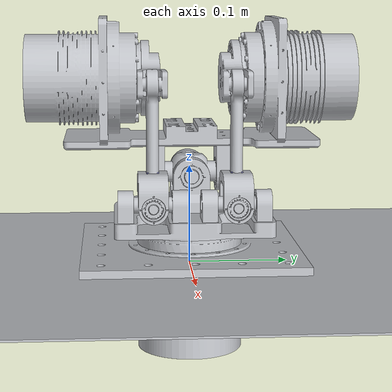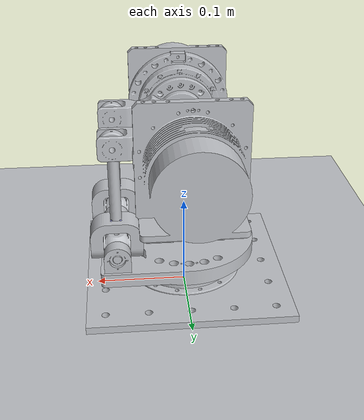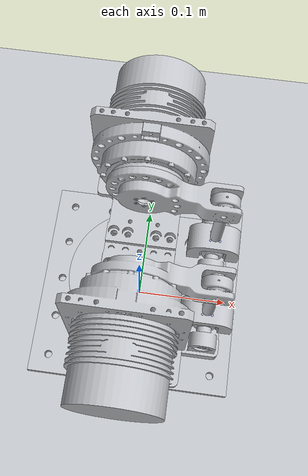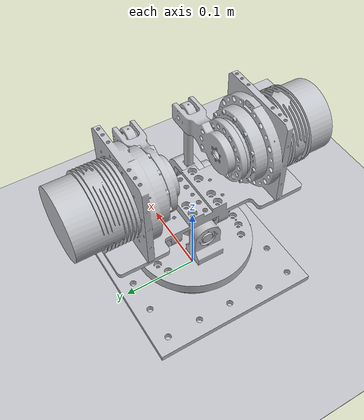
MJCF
<mujoco model="torso_mechanism">

    <compiler meshdir="torso_RSU_stl"/>
    <option gravity="0 0 -9.81" timestep="0.001" integrator="RK4" iterations="500" tolerance="1e-20"/>

    <statistic center="0 0 0.1" extent="1.5"/>

    <default>
        <geom rgba="0.75 0.76 0.78 1" solref="0.5 0.5" solimp="0.5 0.5 0.001 5 3"/>
        <mesh scale="0.001 0.001 0.001" />
        <joint damping="0.01"/>
        <site type="sphere" size="0.00125" rgba="0 0 1 0.1"/>
    </default>

    <visual>
        <map force="1" zfar="10"/>
        <global elevation="-30" azimuth="210" fovy="15"/>
    </visual>

    <asset>
        <texture type="skybox" builtin="gradient" rgb1=".3 .5 .7" rgb2="0 0 0" width="512" height="512"/>
        <texture name="ground plane" type="2d" builtin="checker" mark="edge" width="512" height="512" rgb1=".2 .3 .4" rgb2=".1 .2 .3" markrgb="0.5 0.5 0.5"/>

        <material name="ground plane" texture="ground plane" texrepeat="10 10" texuniform="true" reflectance="0.2"/>

        <mesh name="waist_link" file="waist_link.stl"/>
        <mesh name="base_link" file="base_link.stl"/>
        <mesh name="spider" file="spider.stl"/>
        <mesh name="torso" file="torso.stl"/>
        <mesh name="crank_1" file="crank_1.stl"/>
        <mesh name="crank_2" file="crank_2.stl"/>
        <mesh name="rod_1" file="rod_1.stl"/>
        <mesh name="rod_2" file="rod_2.stl"/>
        <mesh name="s_spider" file="s_spider.stl"/>
    </asset>

    <worldbody>
        <geom name="floor" type="box" size="10 10 0.001" pos="0 0 0" material="ground plane" condim="3"/>
        <light name="spotlight" diffuse="0.1 0.1 0.1" specular="0.8 0.6 0.4" pos="0 0 1"/>
        <light name="top" pos="0 0 3" mode="trackcom" castshadow="false"/>

        <body name="waist_link" euler="0 0 0" pos="0 0 -0.08778">
            <geom name="waist_link" type="mesh" mesh="waist_link"/>

            <body name="base_link" euler="0 0 0" pos="0 0 0.12778">
                <geom name="base_link" type="mesh" mesh="base_link"/>
                <joint name="Yaw" type="hinge" pos="0 0 0" axis="0 0 1" range="-180 180" />

                <!-- Main Branch 1 -->
                <body name="spider" euler="0 0 0" pos="0 0 0.054">
                    <geom name="spider" type="mesh" mesh="spider"/>
                    <joint name="Roll" type="hinge" pos="0 0 0" axis="1 0 0" range="-15 15" />
                    <body name="torso" euler="0 0 0" pos="0 0 0">
                        <geom name="torso" type="mesh" mesh="torso"/>
                        <joint name="Pitch" type="hinge" pos="0 0 0" axis="0 1 0" range="-20 20" />
                        <body name="crank1" euler="0 0 0" pos="0 0.04 0.095 ">
                            <geom name="crank1" type="mesh" mesh="crank_1" />
                            <joint name="Joint_18" type="hinge" pos="0 0 0" axis="0 1 0" />
                            <body name="rod1" euler="0 0 0" pos="0.075 0 0" >
                                <geom name="rod1" type="mesh" mesh="rod_1"  contype="0" conaffinity="0"/>
                                <joint name="Spherical_Joint_1" type="ball" />
                                <site name="a1" pos="0.005 0.005 -0.084"/>
                                <site name="b1" pos="-0.005 0.005 -0.084"/>
                                <site name="c1" pos="-0.005 -0.005 -0.084"/>
                                <site name="d1" pos="0.005 -0.005 -0.084"/>
                            </body>
                        </body>
                        <body name="crank2" euler="0 0 0" pos="0 -0.04 0.095 ">
                            <geom name="crank2" type="mesh" mesh="crank_2" />
                            <joint name="Joint_19" type="hinge" pos="0 0 0" axis="0 1 0" />
                            <body name="rod2" euler="0 0 0" pos="0.075 0 0">
                                <geom name="rod2" type="mesh" mesh="rod_1"  contype="0" conaffinity="0"/>
                                <joint name="Spherical_Joint_2" type="ball" />
                                <site name="a2" pos="0.005 0.005 -0.084"/>
                                <site name="b2" pos="-0.005 0.005 -0.084"/>
                                <site name="c2" pos="-0.005 -0.005 -0.084"/>
                                <site name="d2" pos="0.005 -0.005 -0.084"/>
                            </body>
                        </body>
                    </body>
                </body>

                <!-- Main Branch 2 -->
                <body name="s_spider1" euler="0 0 0" pos="0.075 0.04 0.034">
                    <geom name="s_spider1" type="mesh" mesh="s_spider"/>
                    <joint name="UJ1_pitch" type="hinge" pos="0 0 0" axis="0 1 0" />
                    <body name="rod_1" euler="0 0 0" pos="0 0 0">
                        <joint name="UJ1_roll" type="hinge" pos="0 0 0" axis="1 0 0" />
                        <geom name="rod_1" type="mesh" mesh="rod_2" contype="0" conaffinity="0"/>
                        <site name="e1" pos="0.005 0.005 0.031"/>
                        <site name="f1" pos="-0.005 0.005 0.031"/>
                        <site name="g1" pos="-0.005 -0.005 0.031"/>
                        <site name="h1" pos="0.005 -0.005 0.031"/>
                    </body>
                </body>

                <!-- Main Branch 3 -->
                <body name="s_spider2" euler="0 0 0" pos="0.075 -0.04 0.034">
                    <geom name="s_spider2" type="mesh" mesh="s_spider"/>
                    <joint name="UJ2_pitch" type="hinge" pos="0 0 0" axis="0 1 0" />
                    <body name="rod_2" euler="0 0 0" pos="0 0 0">
                        <joint name="UJ2_roll" type="hinge" pos="0 0 0" axis="1 0 0" />
                        <geom name="rod_2" type="mesh" mesh="rod_2" contype="0" conaffinity="0"/>
                        <site name="e2" pos="0.005 0.005 0.031"/>
                        <site name="f2" pos="-0.005 0.005 0.031"/>
                        <site name="g2" pos="-0.005 -0.005 0.031"/>
                        <site name="h2" pos="0.005 -0.005 0.031"/>
                    </body>
                </body>

            </body>
        </body>
    </worldbody>

    <equality>
        <weld site1="a1" site2="e1"/>
        <weld site1="b1" site2="f1"/>
        <weld site1="c1" site2="g1"/>
        <weld site1="d1" site2="h1"/>
        <weld site1="a2" site2="e2"/>
        <weld site1="b2" site2="f2"/>
        <weld site1="c2" site2="g2"/>
        <weld site1="d2" site2="h2"/>
    </equality>

    <actuator>
        <position name="Roll" joint="Roll" kp="150" kv="10" ctrlrange="-0.26179 0.26179"/>
        <position name="Pitch" joint="Pitch" kp="150" kv="10" ctrlrange="-0.349066 0.349066"/>
        <position name="Yaw" joint="Yaw" kp="800" kv="120" ctrlrange="-1.57080 1.57080"/>
    </actuator>

    <sensor>
        <jointpos name="joint18_position" joint="Joint_18" />
        <jointpos name="joint19_position" joint="Joint_19" />
    </sensor>

</mujoco>
